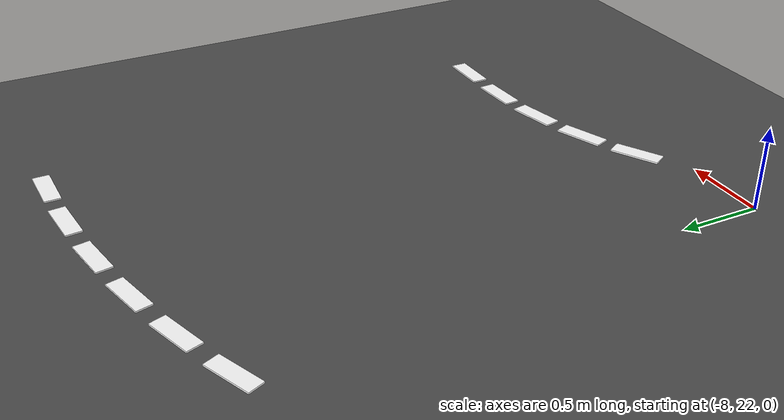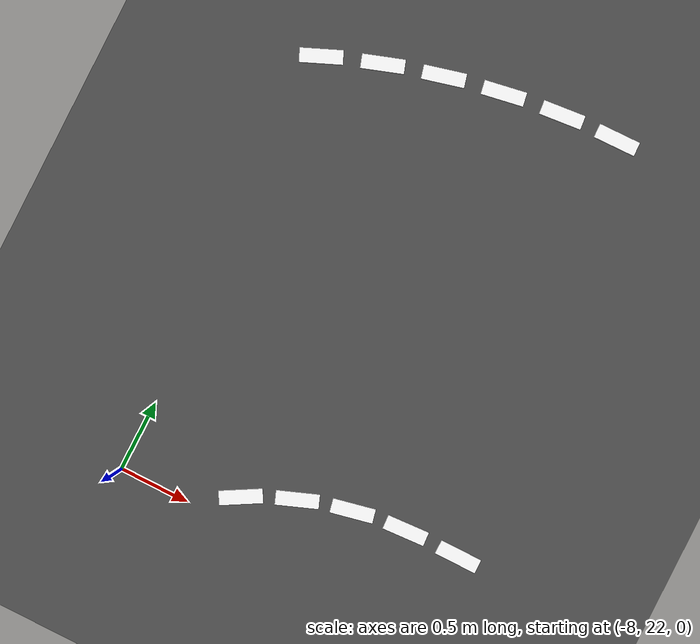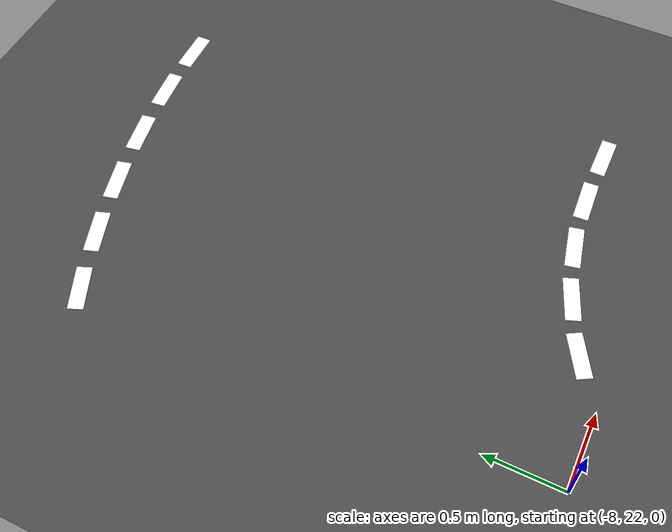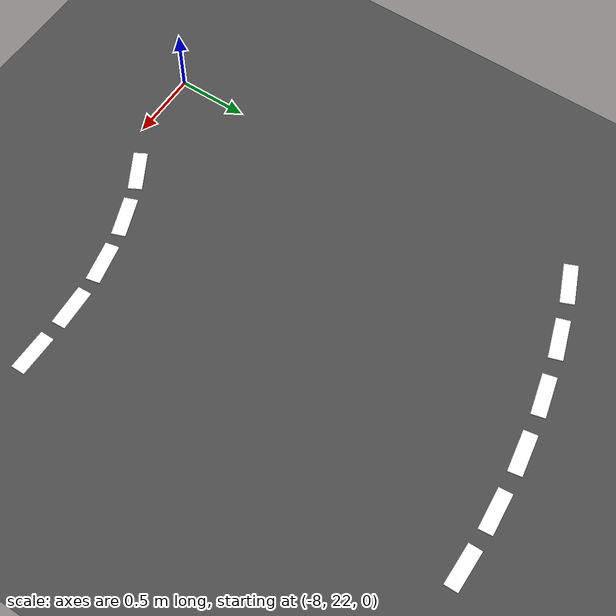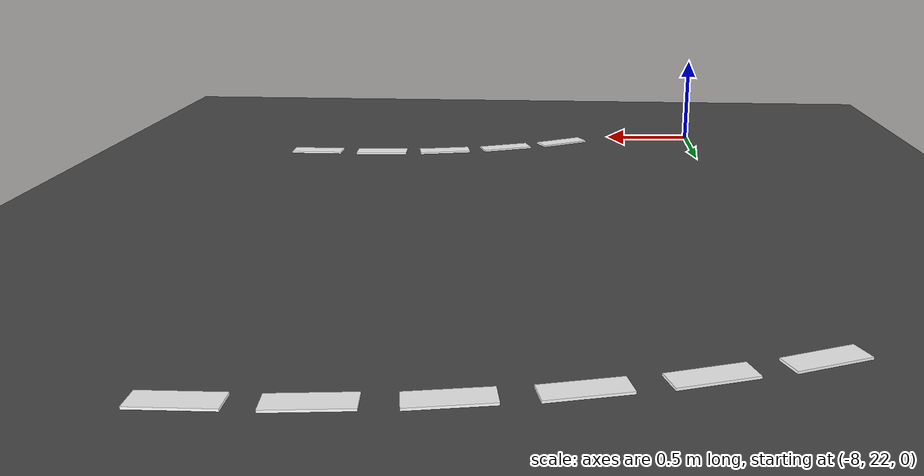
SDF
<sdf version="1.10">
 <world name="igvc_autonav">
  <model name="ground_plane">
   <static>true</static>
   <link name="link">
    <collision name="collision">
     <geometry><plane><normal>0 0 1</normal><size>60 60</size></plane></geometry>
     <surface><friction><ode><mu>0.80000000000000004</mu><mu2>0.80000000000000004</mu2></ode></friction></surface>
    </collision>
    <visual name="visual">
     <geometry><plane><normal>0 0 1</normal><size>60 60</size></plane></geometry>
     <material>
      <ambient>0.25 0.25 0.25 1</ambient>
      <diffuse>0.300000012 0.300000012 0.300000012 1</diffuse>
      <specular>0.100000001 0.100000001 0.100000001 1</specular>
     </material>
    </visual>
    <inertial>
     <mass>1</mass>
     <inertia><ixx>1</ixx><ixy>0</ixy><ixz>0</ixz><iyy>1</iyy><iyz>0</iyz><izz>1</izz></inertia>
    </inertial>
   </link>
  </model>
  <model name="lane_inner_120">
   <static>true</static>
   <pose>-5.7000000000000002 22.5 0.01 0 0 -3.1415899999999999</pose>
   <link name="link">
    <visual name="visual">
     <geometry><box><size>0.29999999999999999 0.10000000000000001 0.01</size></box></geometry>
     <material><ambient>1 1 1 1</ambient><diffuse>1 1 1 1</diffuse><emissive>1 1 1 1</emissive></material>
    </visual>
    <inertial>
     <mass>1</mass>
     <inertia><ixx>1</ixx><ixy>0</ixy><ixz>0</ixz><iyy>1</iyy><iyz>0</iyz><izz>1</izz></inertia>
    </inertial>
   </link>
  </model>
  <model name="lane_inner_121">
   <static>true</static>
   <pose>-6.0957999999999997 22.498200000000001 0.01 0 0 -3.0840999999999998</pose>
   <link name="link">
    <visual name="visual">
     <geometry><box><size>0.29999999999999999 0.10000000000000001 0.01</size></box></geometry>
     <material><ambient>1 1 1 1</ambient><diffuse>1 1 1 1</diffuse><emissive>1 1 1 1</emissive></material>
    </visual>
    <inertial>
     <mass>1</mass>
     <inertia><ixx>1</ixx><ixy>0</ixy><ixz>0</ixz><iyy>1</iyy><iyz>0</iyz><izz>1</izz></inertia>
    </inertial>
   </link>
  </model>
  <model name="lane_inner_122">
   <static>true</static>
   <pose>-6.476 22.4543 0.01 0 0 -2.9308999999999998</pose>
   <link name="link">
    <visual name="visual">
     <geometry><box><size>0.29999999999999999 0.10000000000000001 0.01</size></box></geometry>
     <material><ambient>1 1 1 1</ambient><diffuse>1 1 1 1</diffuse><emissive>1 1 1 1</emissive></material>
    </visual>
    <inertial>
     <mass>1</mass>
     <inertia><ixx>1</ixx><ixy>0</ixy><ixz>0</ixz><iyy>1</iyy><iyz>0</iyz><izz>1</izz></inertia>
    </inertial>
   </link>
  </model>
  <model name="lane_inner_123">
   <static>true</static>
   <pose>-6.8449999999999998 22.352900000000002 0.01 0 0 -2.7776000000000001</pose>
   <link name="link">
    <visual name="visual">
     <geometry><box><size>0.29999999999999999 0.10000000000000001 0.01</size></box></geometry>
     <material><ambient>1 1 1 1</ambient><diffuse>1 1 1 1</diffuse><emissive>1 1 1 1</emissive></material>
    </visual>
    <inertial>
     <mass>1</mass>
     <inertia><ixx>1</ixx><ixy>0</ixy><ixz>0</ixz><iyy>1</iyy><iyz>0</iyz><izz>1</izz></inertia>
    </inertial>
   </link>
  </model>
  <model name="lane_inner_124">
   <static>true</static>
   <pose>-7.1943000000000001 22.196300000000001 0.01 0 0 -2.6244000000000001</pose>
   <link name="link">
    <visual name="visual">
     <geometry><box><size>0.29999999999999999 0.10000000000000001 0.01</size></box></geometry>
     <material><ambient>1 1 1 1</ambient><diffuse>1 1 1 1</diffuse><emissive>1 1 1 1</emissive></material>
    </visual>
    <inertial>
     <mass>1</mass>
     <inertia><ixx>1</ixx><ixy>0</ixy><ixz>0</ixz><iyy>1</iyy><iyz>0</iyz><izz>1</izz></inertia>
    </inertial>
   </link>
  </model>
  <model name="lane_outer_143">
   <static>true</static>
   <pose>-6.0145 25.4999 0.01 0 0 -3.1214</pose>
   <link name="link">
    <visual name="visual">
     <geometry><box><size>0.29999999999999999 0.10000000000000001 0.01</size></box></geometry>
     <material><ambient>1 1 1 1</ambient><diffuse>1 1 1 1</diffuse><emissive>1 1 1 1</emissive></material>
    </visual>
    <inertial>
     <mass>1</mass>
     <inertia><ixx>1</ixx><ixy>0</ixy><ixz>0</ixz><iyy>1</iyy><iyz>0</iyz><izz>1</izz></inertia>
    </inertial>
   </link>
  </model>
  <model name="lane_outer_144">
   <static>true</static>
   <pose>-6.4210000000000003 25.483899999999998 0.01 0 0 -3.0457999999999998</pose>
   <link name="link">
    <visual name="visual">
     <geometry><box><size>0.29999999999999999 0.10000000000000001 0.01</size></box></geometry>
     <material><ambient>1 1 1 1</ambient><diffuse>1 1 1 1</diffuse><emissive>1 1 1 1</emissive></material>
    </visual>
    <inertial>
     <mass>1</mass>
     <inertia><ixx>1</ixx><ixy>0</ixy><ixz>0</ixz><iyy>1</iyy><iyz>0</iyz><izz>1</izz></inertia>
    </inertial>
   </link>
  </model>
  <model name="lane_outer_145">
   <static>true</static>
   <pose>-6.8395999999999999 25.435500000000001 0.01 0 0 -2.9691999999999998</pose>
   <link name="link">
    <visual name="visual">
     <geometry><box><size>0.29999999999999999 0.10000000000000001 0.01</size></box></geometry>
     <material><ambient>1 1 1 1</ambient><diffuse>1 1 1 1</diffuse><emissive>1 1 1 1</emissive></material>
    </visual>
    <inertial>
     <mass>1</mass>
     <inertia><ixx>1</ixx><ixy>0</ixy><ixz>0</ixz><iyy>1</iyy><iyz>0</iyz><izz>1</izz></inertia>
    </inertial>
   </link>
  </model>
  <model name="lane_outer_146">
   <static>true</static>
   <pose>-7.2531999999999996 25.3553 0.01 0 0 -2.8925999999999998</pose>
   <link name="link">
    <visual name="visual">
     <geometry><box><size>0.29999999999999999 0.10000000000000001 0.01</size></box></geometry>
     <material><ambient>1 1 1 1</ambient><diffuse>1 1 1 1</diffuse><emissive>1 1 1 1</emissive></material>
    </visual>
    <inertial>
     <mass>1</mass>
     <inertia><ixx>1</ixx><ixy>0</ixy><ixz>0</ixz><iyy>1</iyy><iyz>0</iyz><izz>1</izz></inertia>
    </inertial>
   </link>
  </model>
  <model name="lane_outer_147">
   <static>true</static>
   <pose>-7.6595000000000004 25.2437 0.01 0 0 -2.8159000000000001</pose>
   <link name="link">
    <visual name="visual">
     <geometry><box><size>0.29999999999999999 0.10000000000000001 0.01</size></box></geometry>
     <material><ambient>1 1 1 1</ambient><diffuse>1 1 1 1</diffuse><emissive>1 1 1 1</emissive></material>
    </visual>
    <inertial>
     <mass>1</mass>
     <inertia><ixx>1</ixx><ixy>0</ixy><ixz>0</ixz><iyy>1</iyy><iyz>0</iyz><izz>1</izz></inertia>
    </inertial>
   </link>
  </model>
  <model name="lane_outer_148">
   <static>true</static>
   <pose>-8.0559999999999992 25.101299999999998 0.01 0 0 -2.7393000000000001</pose>
   <link name="link">
    <visual name="visual">
     <geometry><box><size>0.29999999999999999 0.10000000000000001 0.01</size></box></geometry>
     <material><ambient>1 1 1 1</ambient><diffuse>1 1 1 1</diffuse><emissive>1 1 1 1</emissive></material>
    </visual>
    <inertial>
     <mass>1</mass>
     <inertia><ixx>1</ixx><ixy>0</ixy><ixz>0</ixz><iyy>1</iyy><iyz>0</iyz><izz>1</izz></inertia>
    </inertial>
   </link>
  </model>
 </world>
</sdf>
